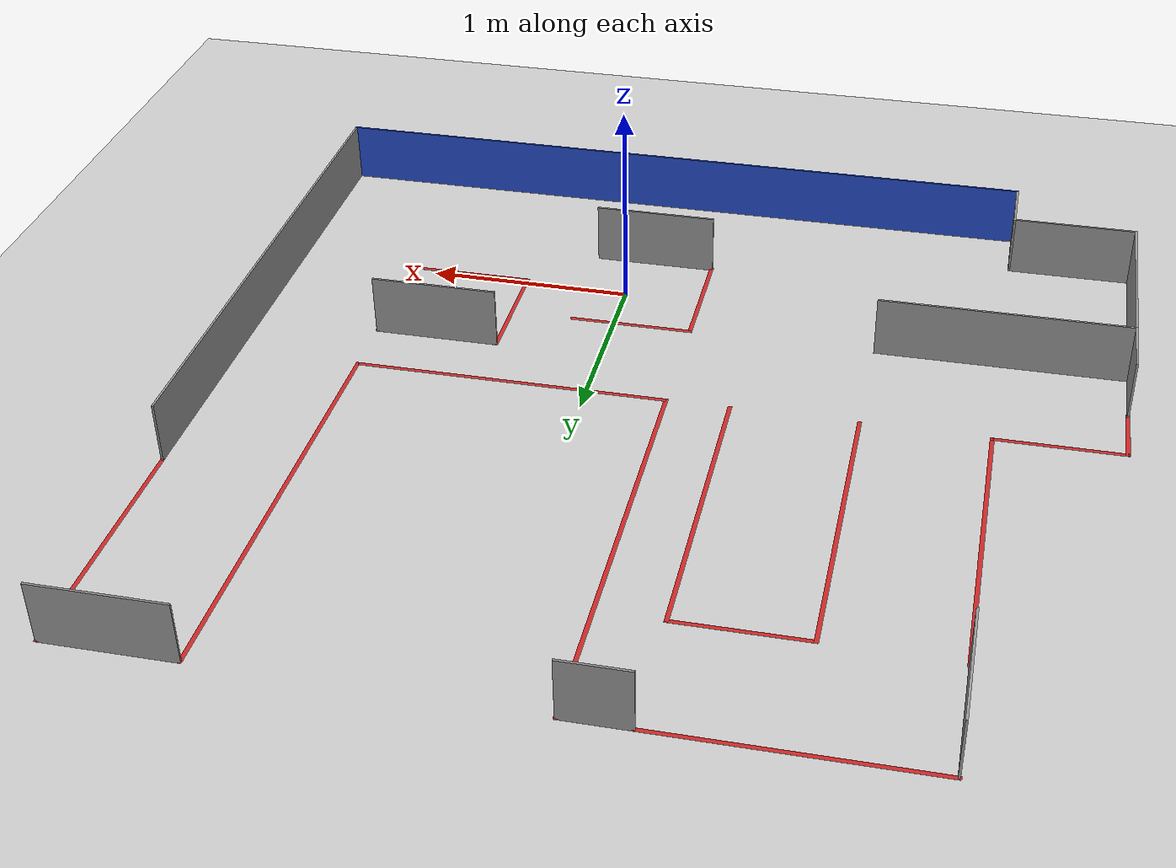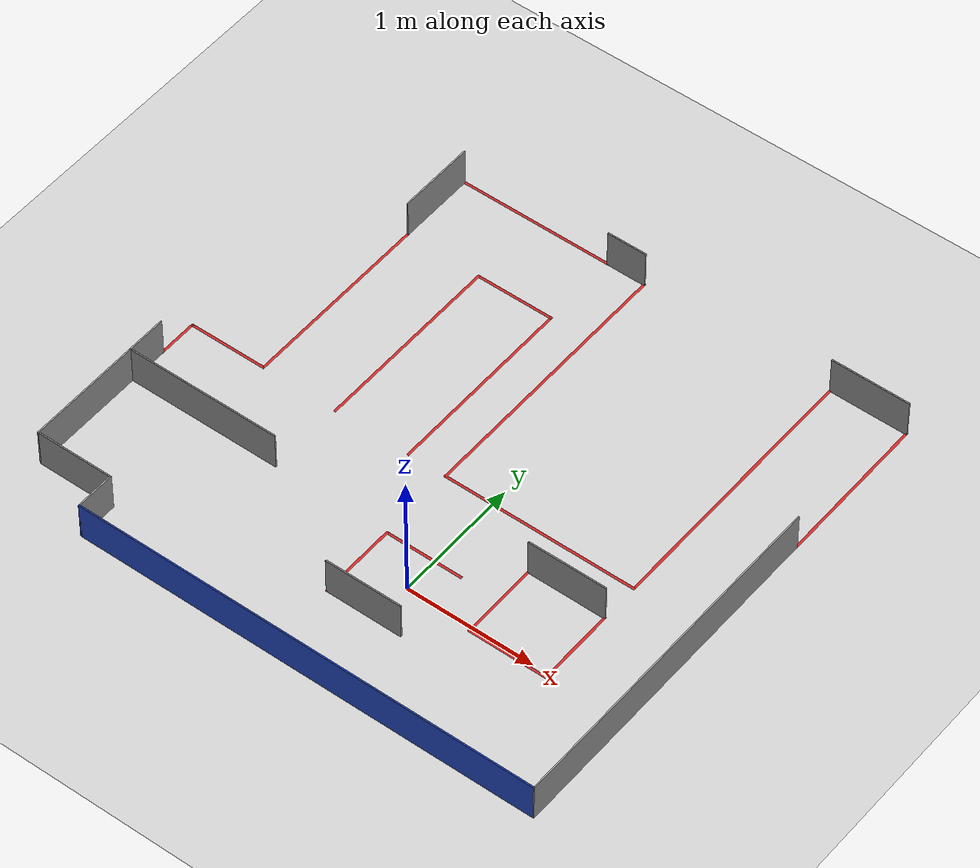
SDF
<sdf version="1.6">
 <world name="default">
  <scene><ambient>0.4 0.4 0.4 1</ambient><background>0.7 0.7 0.7 1</background><shadows>1</shadows></scene>
  <light name="sun" type="directional">
   <pose>0 0 10 0 -0 0</pose>
   <diffuse>0.8 0.8 0.8 1</diffuse>
   <specular>0.2 0.2 0.2 1</specular>
   <attenuation>
    <range>1000</range>
    <constant>0.9</constant>
    <linear>0.01</linear>
    <quadratic>0.001</quadratic>
   </attenuation>
   <direction>-0.5 0.1 -0.9</direction>
   <spot><inner_angle>0</inner_angle><outer_angle>0</outer_angle><falloff>0</falloff></spot>
  </light>
  <model name="ground_plane">
   <static>1</static>
   <link name="link">
    <collision name="collision">
     <geometry><plane><normal>0 0 1</normal><size>100 100</size></plane></geometry>
     <surface>
      <contact><collide_bitmask>65535</collide_bitmask></contact>
      <friction><ode><mu>100</mu><mu2>50</mu2></ode></friction>
     </surface>
    </collision>
    <visual name="visual">
     <cast_shadows>0</cast_shadows>
     <geometry><plane><normal>0 0 1</normal><size>100 100</size></plane></geometry>
     <material>
      <script><uri>file://media/materials/scripts/gazebo.material</uri><name>Gazebo/Grey</name></script>
     </material>
    </visual>
   </link>
  </model>
  <physics type="ode">
   <real_time_update_rate>1000</real_time_update_rate>
   <max_step_size>0.001</max_step_size>
   <real_time_factor>1</real_time_factor>
   <ode>
    <solver>
     <type>quick</type>
     <iters>150</iters>
     <precon_iters>0</precon_iters>
     <sor>1.4</sor>
     <use_dynamic_moi_rescaling>1</use_dynamic_moi_rescaling>
    </solver>
    <constraints>
     <cfm>1e-05</cfm>
     <erp>0.2</erp>
     <contact_max_correcting_vel>2000</contact_max_correcting_vel>
     <contact_surface_layer>0.01</contact_surface_layer>
    </constraints>
   </ode>
  </physics>
  <gravity>0 0 -9.8</gravity>
  <magnetic_field>6e-06 2.3e-05 -4.2e-05</magnetic_field>
  <atmosphere type="adiabatic"/>
  <spherical_coordinates>
   <surface_model>EARTH_WGS84</surface_model>
   <latitude_deg>0</latitude_deg>
   <longitude_deg>0</longitude_deg>
   <elevation>0</elevation>
   <heading_deg>0</heading_deg>
  </spherical_coordinates>
  <model name="ROSTO">
   <pose>-0.380528 1.02444 0 0 -0 0</pose>
   <link name="Wall_0">
    <collision name="Wall_0_Collision">
     <geometry><box><size>3.61 0.01 0.3</size></box></geometry>
     <pose>0 0 0.15 0 -0 0</pose>
    </collision>
    <visual name="Wall_0_Visual">
     <pose>0 0 0.15 0 -0 0</pose>
     <geometry><box><size>3.61 0.01 0.3</size></box></geometry>
     <material>
      <script><uri>file://media/materials/scripts/gazebo.material</uri><name>Gazebo/Blue</name></script>
      <ambient>1 1 1 1</ambient>
     </material>
     <meta><layer>0</layer></meta>
    </visual>
    <pose>0.3 -1.9525 0 0 -0 0</pose>
   </link>
   <link name="Wall_12">
    <collision name="Wall_12_Collision">
     <geometry><box><size>0.61 0.01 0.3</size></box></geometry>
     <pose>0 0 0.15 0 -0 0</pose>
    </collision>
    <visual name="Wall_12_Visual">
     <pose>0 0 0.15 0 -0 0</pose>
     <geometry><box><size>0.61 0.01 0.3</size></box></geometry>
     <material>
      <script><uri>file://media/materials/scripts/gazebo.material</uri><name>Gazebo/Grey</name></script>
      <ambient>1 1 1 1</ambient>
     </material>
     <meta><layer>0</layer></meta>
    </visual>
    <pose>1.8 1.9475 0 0 -0 3.14159</pose>
   </link>
   <link name="Wall_14">
    <collision name="Wall_14_Collision">
     <geometry><box><size>2.12 0.02 0</size></box></geometry>
     <pose>0 0 0.005 0 -0 0</pose>
    </collision>
    <visual name="Wall_14_Visual">
     <pose>0 0 0.005 0 -0 0</pose>
     <geometry><box><size>2.12 0.02 0</size></box></geometry>
     <material>
      <script><uri>file://media/materials/scripts/gazebo.material</uri><name>Gazebo/Red</name></script>
      <ambient>1 0 0 1</ambient>
     </material>
     <meta><layer>0</layer></meta>
    </visual>
    <pose>1.5 0.8975 0 0 -0 -1.5708</pose>
   </link>
   <link name="Wall_16">
    <collision name="Wall_16_Collision">
     <geometry><box><size>1.52 0.02 0</size></box></geometry>
     <pose>0 0 0.005 0 -0 0</pose>
    </collision>
    <visual name="Wall_16_Visual">
     <pose>0 0 0.005 0 -0 0</pose>
     <geometry><box><size>1.52 0.02 0</size></box></geometry>
     <material>
      <script><uri>file://media/materials/scripts/gazebo.material</uri><name>Gazebo/Red</name></script>
      <ambient>1 0 0 1</ambient>
     </material>
     <meta><layer>0</layer></meta>
    </visual>
    <pose>0.75 -0.1525 0 0 -0 3.14159</pose>
   </link>
   <link name="Wall_18">
    <collision name="Wall_18_Collision">
     <geometry><box><size>2.12 0.02 0</size></box></geometry>
     <pose>0 0 0.005 0 -0 0</pose>
    </collision>
    <visual name="Wall_18_Visual">
     <pose>0 0 0.005 0 -0 0</pose>
     <geometry><box><size>2.12 0.02 0</size></box></geometry>
     <material>
      <script><uri>file://media/materials/scripts/gazebo.material</uri><name>Gazebo/Red</name></script>
      <ambient>1 0 0 1</ambient>
     </material>
     <meta><layer>0</layer></meta>
    </visual>
    <pose>0 0.8975 0 0 -0 1.5708</pose>
   </link>
   <link name="Wall_20">
    <collision name="Wall_20_Collision">
     <geometry><box><size>0.31 0.01 0.3</size></box></geometry>
     <pose>0 0 0.15 0 -0 0</pose>
    </collision>
    <visual name="Wall_20_Visual">
     <pose>0 0 0.15 0 -0 0</pose>
     <geometry><box><size>0.31 0.01 0.3</size></box></geometry>
     <material>
      <script><uri>file://media/materials/scripts/gazebo.material</uri><name>Gazebo/Grey</name></script>
      <ambient>1 1 1 1</ambient>
     </material>
     <meta><layer>0</layer></meta>
    </visual>
    <pose>-0.15 1.9475 0 0 -0 3.14159</pose>
   </link>
   <link name="Wall_24">
    <collision name="Wall_24_Collision">
     <geometry><box><size>1.22 0.02 0</size></box></geometry>
     <pose>0 0 0.005 0 -0 0</pose>
    </collision>
    <visual name="Wall_24_Visual">
     <pose>0 0 0.005 0 -0 0</pose>
     <geometry><box><size>1.22 0.02 0</size></box></geometry>
     <material>
      <script><uri>file://media/materials/scripts/gazebo.material</uri><name>Gazebo/Red</name></script>
      <ambient>1 0 0 1</ambient>
     </material>
     <meta><layer>0</layer></meta>
    </visual>
    <pose>-0.9 1.9475 0 0 -0 3.14159</pose>
   </link>
   <link name="Wall_26">
    <collision name="Wall_26_Collision">
     <geometry><box><size>0.61 0.01 0.3</size></box></geometry>
     <pose>0 0 0.15 0 -0 0</pose>
    </collision>
    <visual name="Wall_26_Visual">
     <pose>0 0 0.15 0 -0 0</pose>
     <geometry><box><size>0.61 0.01 0.3</size></box></geometry>
     <material>
      <script><uri>file://media/materials/scripts/gazebo.material</uri><name>Gazebo/Grey</name></script>
      <ambient>1 1 1 1</ambient>
     </material>
     <meta><layer>0</layer></meta>
    </visual>
    <pose>-1.5 1.6475 0 0 -0 -1.5708</pose>
   </link>
   <link name="Wall_28">
    <collision name="Wall_28_Collision">
     <geometry><box><size>1.52 0.02 0</size></box></geometry>
     <pose>0 0 0.005 0 -0 0</pose>
    </collision>
    <visual name="Wall_28_Visual">
     <pose>0 0 0.005 0 -0 0</pose>
     <geometry><box><size>1.52 0.02 0</size></box></geometry>
     <material>
      <script><uri>file://media/materials/scripts/gazebo.material</uri><name>Gazebo/Red</name></script>
      <ambient>1 0 0 1</ambient>
     </material>
     <meta><layer>0</layer></meta>
    </visual>
    <pose>-1.5 0.5975 0 0 -0 -1.5708</pose>
   </link>
   <link name="Wall_3">
    <collision name="Wall_3_Collision">
     <geometry><box><size>2.71 0.01 0.3</size></box></geometry>
     <pose>0 0 0.15 0 -0 0</pose>
    </collision>
    <visual name="Wall_3_Visual">
     <pose>0 0 0.15 0 -0 0</pose>
     <geometry><box><size>2.71 0.01 0.3</size></box></geometry>
     <material>
      <script><uri>file://media/materials/scripts/gazebo.material</uri><name>Gazebo/Grey</name></script>
      <ambient>1 1 1 1</ambient>
     </material>
     <meta><layer>0</layer></meta>
    </visual>
    <pose>2.1 -0.6025 0 0 -0 1.5708</pose>
   </link>
   <link name="Wall_30">
    <collision name="Wall_30_Collision">
     <geometry><box><size>0.62 0.02 0</size></box></geometry>
     <pose>0 0 0.005 0 -0 0</pose>
    </collision>
    <visual name="Wall_30_Visual">
     <pose>0 0 0.005 0 -0 0</pose>
     <geometry><box><size>0.62 0.02 0</size></box></geometry>
     <material>
      <script><uri>file://media/materials/scripts/gazebo.material</uri><name>Gazebo/Red</name></script>
      <ambient>1 0 0 1</ambient>
     </material>
     <meta><layer>0</layer></meta>
    </visual>
    <pose>-1.8 -0.1525 0 0 -0 3.14159</pose>
   </link>
   <link name="Wall_32">
    <collision name="Wall_32_Collision">
     <geometry><box><size>0.32 0.02 0</size></box></geometry>
     <pose>0 0 0.005 0 -0 0</pose>
    </collision>
    <visual name="Wall_32_Visual">
     <pose>0 0 0.005 0 -0 0</pose>
     <geometry><box><size>0.32 0.02 0</size></box></geometry>
     <material>
      <script><uri>file://media/materials/scripts/gazebo.material</uri><name>Gazebo/Red</name></script>
      <ambient>1 0 0 1</ambient>
     </material>
     <meta><layer>0</layer></meta>
    </visual>
    <pose>-2.1 -0.3025 0 0 -0 -1.5708</pose>
   </link>
   <link name="Wall_34">
    <collision name="Wall_34_Collision">
     <geometry><box><size>0.31 0.01 0.3</size></box></geometry>
     <pose>0 0 0.15 0 -0 0</pose>
    </collision>
    <visual name="Wall_34_Visual">
     <pose>0 0 0.15 0 -0 0</pose>
     <geometry><box><size>0.31 0.01 0.3</size></box></geometry>
     <material>
      <script><uri>file://media/materials/scripts/gazebo.material</uri><name>Gazebo/Grey</name></script>
      <ambient>1 1 1 1</ambient>
     </material>
     <meta><layer>0</layer></meta>
    </visual>
    <pose>-2.1 -0.6025 0 0 -0 -1.5708</pose>
   </link>
   <link name="Wall_37">
    <collision name="Wall_37_Collision">
     <geometry><box><size>1.205 0.01 0.3</size></box></geometry>
     <pose>0 0 0.15 0 -0 0</pose>
    </collision>
    <visual name="Wall_37_Visual">
     <pose>0 0 0.15 0 -0 0</pose>
     <geometry><box><size>1.205 0.01 0.3</size></box></geometry>
     <material>
      <script><uri>file://media/materials/scripts/gazebo.material</uri><name>Gazebo/Grey</name></script>
      <ambient>1 1 1 1</ambient>
     </material>
     <meta><layer>0</layer></meta>
    </visual>
    <pose>-1.5025 -0.7525 0 0 -0 0</pose>
   </link>
   <link name="Wall_39">
    <collision name="Wall_39_Collision">
     <geometry><box><size>0.91 0.01 0.3</size></box></geometry>
     <pose>0 0 0.15 0 -0 0</pose>
    </collision>
    <visual name="Wall_39_Visual">
     <pose>0 0 0.15 0 -0 0</pose>
     <geometry><box><size>0.91 0.01 0.3</size></box></geometry>
     <material>
      <script><uri>file://media/materials/scripts/gazebo.material</uri><name>Gazebo/Grey</name></script>
      <ambient>1 1 1 1</ambient>
     </material>
     <meta><layer>0</layer></meta>
    </visual>
    <pose>-2.1 -1.2025 0 0 -0 -1.5708</pose>
   </link>
   <link name="Wall_41">
    <collision name="Wall_41_Collision">
     <geometry><box><size>0.61 0.01 0.3</size></box></geometry>
     <pose>0 0 0.15 0 -0 0</pose>
    </collision>
    <visual name="Wall_41_Visual">
     <pose>0 0 0.15 0 -0 0</pose>
     <geometry><box><size>0.61 0.01 0.3</size></box></geometry>
     <material>
      <script><uri>file://media/materials/scripts/gazebo.material</uri><name>Gazebo/Grey</name></script>
      <ambient>1 1 1 1</ambient>
     </material>
     <meta><layer>0</layer></meta>
    </visual>
    <pose>-1.8 -1.6525 0 0 -0 0</pose>
   </link>
   <link name="Wall_43">
    <collision name="Wall_43_Collision">
     <geometry><box><size>0.31 0.01 0.3</size></box></geometry>
     <pose>0 0 0.15 0 -0 0</pose>
    </collision>
    <visual name="Wall_43_Visual">
     <pose>0 0 0.15 0 -0 0</pose>
     <geometry><box><size>0.31 0.01 0.3</size></box></geometry>
     <material>
      <script><uri>file://media/materials/scripts/gazebo.material</uri><name>Gazebo/Grey</name></script>
      <ambient>1 1 1 1</ambient>
     </material>
     <meta><layer>0</layer></meta>
    </visual>
    <pose>-1.5 -1.8025 0 0 -0 -1.5708</pose>
   </link>
   <link name="Wall_50">
    <collision name="Wall_50_Collision">
     <geometry><box><size>1.51 0.02 0</size></box></geometry>
     <pose>0 0 0.005 0 -0 0</pose>
    </collision>
    <visual name="Wall_50_Visual">
     <pose>0 0 0.005 0 -0 0</pose>
     <geometry><box><size>1.51 0.02 0</size></box></geometry>
     <material>
      <script><uri>file://media/materials/scripts/gazebo.material</uri><name>Gazebo/Red</name></script>
      <ambient>1 0 0 1</ambient>
     </material>
     <meta><layer>0</layer></meta>
    </visual>
    <pose>-0.3 0.5915 0 0 -0 1.5708</pose>
   </link>
   <link name="Wall_52">
    <collision name="Wall_52_Collision">
     <geometry><box><size>0.62 0.02 0</size></box></geometry>
     <pose>0 0 0.005 0 -0 0</pose>
    </collision>
    <visual name="Wall_52_Visual">
     <pose>0 0 0.005 0 -0 0</pose>
     <geometry><box><size>0.62 0.02 0</size></box></geometry>
     <material>
      <script><uri>file://media/materials/scripts/gazebo.material</uri><name>Gazebo/Red</name></script>
      <ambient>1 0 0 1</ambient>
     </material>
     <meta><layer>0</layer></meta>
    </visual>
    <pose>-0.6 1.3365 0 0 -0 3.14159</pose>
   </link>
   <link name="Wall_54">
    <collision name="Wall_54_Collision">
     <geometry><box><size>1.51 0.02 0</size></box></geometry>
     <pose>0 0 0.005 0 -0 0</pose>
    </collision>
    <visual name="Wall_54_Visual">
     <pose>0 0 0.005 0 -0 0</pose>
     <geometry><box><size>1.51 0.02 0</size></box></geometry>
     <material>
      <script><uri>file://media/materials/scripts/gazebo.material</uri><name>Gazebo/Red</name></script>
      <ambient>1 0 0 1</ambient>
     </material>
     <meta><layer>0</layer></meta>
    </visual>
    <pose>-0.9 0.5915 0 0 -0 -1.5708</pose>
   </link>
   <link name="Wall_58">
    <collision name="Wall_58_Collision">
     <geometry><box><size>0.61 0.02 0</size></box></geometry>
     <pose>0 0 0.005 0 -0 0</pose>
    </collision>
    <visual name="Wall_58_Visual">
     <pose>0 0 0.005 0 -0 0</pose>
     <geometry><box><size>0.61 0.02 0</size></box></geometry>
     <material>
      <script><uri>file://media/materials/scripts/gazebo.material</uri><name>Gazebo/Red</name></script>
      <ambient>1 0 0 1</ambient>
     </material>
     <meta><layer>0</layer></meta>
    </visual>
    <pose>0.295 -0.7475 0 0 -0 0</pose>
   </link>
   <link name="Wall_6">
    <collision name="Wall_6_Collision">
     <geometry><box><size>1.22 0.02 0</size></box></geometry>
     <pose>0 0 0.005 0 -0 0</pose>
    </collision>
    <visual name="Wall_6_Visual">
     <pose>0 0 0.005 0 -0 0</pose>
     <geometry><box><size>1.22 0.02 0</size></box></geometry>
     <material>
      <script><uri>file://media/materials/scripts/gazebo.material</uri><name>Gazebo/Red</name></script>
      <ambient>1 0 0 1</ambient>
     </material>
     <meta><layer>0</layer></meta>
    </visual>
    <pose>2.1 1.3475 0 0 -0 1.5708</pose>
   </link>
   <link name="Wall_60">
    <collision name="Wall_60_Collision">
     <geometry><box><size>0.62 0.02 0</size></box></geometry>
     <pose>0 0 0.005 0 -0 0</pose>
    </collision>
    <visual name="Wall_60_Visual">
     <pose>0 0 0.005 0 -0 0</pose>
     <geometry><box><size>0.62 0.02 0</size></box></geometry>
     <material>
      <script><uri>file://media/materials/scripts/gazebo.material</uri><name>Gazebo/Red</name></script>
      <ambient>1 0 0 1</ambient>
     </material>
     <meta><layer>0</layer></meta>
    </visual>
    <pose>0 -1.0475 0 0 -0 -1.5708</pose>
   </link>
   <link name="Wall_62">
    <collision name="Wall_62_Collision">
     <geometry><box><size>0.6 0.01 0.3</size></box></geometry>
     <pose>0 0 0.15 0 -0 0</pose>
    </collision>
    <visual name="Wall_62_Visual">
     <pose>0 0 0.15 0 -0 0</pose>
     <geometry><box><size>0.6 0.01 0.3</size></box></geometry>
     <material>
      <script><uri>file://media/materials/scripts/gazebo.material</uri><name>Gazebo/Grey</name></script>
      <ambient>1 1 1 1</ambient>
     </material>
     <meta><layer>0</layer></meta>
    </visual>
    <pose>0.295 -1.3475 0 0 -0 0</pose>
   </link>
   <link name="Wall_66">
    <collision name="Wall_66_Collision">
     <geometry><box><size>0.61 0.01 0.3</size></box></geometry>
     <pose>0 0 0.15 0 -0 0</pose>
    </collision>
    <visual name="Wall_66_Visual">
     <pose>0 0 0.15 0 -0 0</pose>
     <geometry><box><size>0.61 0.01 0.3</size></box></geometry>
     <material>
      <script><uri>file://media/materials/scripts/gazebo.material</uri><name>Gazebo/Grey</name></script>
      <ambient>1 1 1 1</ambient>
     </material>
     <meta><layer>0</layer></meta>
    </visual>
    <pose>1.2 -0.4525 0 0 -0 3.14159</pose>
   </link>
   <link name="Wall_68">
    <collision name="Wall_68_Collision">
     <geometry><box><size>0.62 0.02 0</size></box></geometry>
     <pose>0 0 0.005 0 -0 0</pose>
    </collision>
    <visual name="Wall_68_Visual">
     <pose>0 0 0.005 0 -0 0</pose>
     <geometry><box><size>0.62 0.02 0</size></box></geometry>
     <material>
      <script><uri>file://media/materials/scripts/gazebo.material</uri><name>Gazebo/Red</name></script>
      <ambient>1 0 0 1</ambient>
     </material>
     <meta><layer>0</layer></meta>
    </visual>
    <pose>0.9 -0.7525 0 0 -0 -1.5708</pose>
   </link>
   <link name="Wall_70">
    <collision name="Wall_70_Collision">
     <geometry><box><size>0.62 0.02 0</size></box></geometry>
     <pose>0 0 0.005 0 -0 0</pose>
    </collision>
    <visual name="Wall_70_Visual">
     <pose>0 0 0.005 0 -0 0</pose>
     <geometry><box><size>0.62 0.02 0</size></box></geometry>
     <material>
      <script><uri>file://media/materials/scripts/gazebo.material</uri><name>Gazebo/Red</name></script>
      <ambient>1 0 0 1</ambient>
     </material>
     <meta><layer>0</layer></meta>
    </visual>
    <pose>1.2 -1.0525 0 0 -0 0</pose>
   </link>
   <link name="Wall_76">
    <collision name="Wall_76_Collision">
     <geometry><box><size>0.62 0.02 0</size></box></geometry>
     <pose>0 0 0.005 0 -0 0</pose>
    </collision>
    <visual name="Wall_76_Visual">
     <pose>0 0 0.005 0 -0 0</pose>
     <geometry><box><size>0.62 0.02 0</size></box></geometry>
     <material>
      <script><uri>file://media/materials/scripts/gazebo.material</uri><name>Gazebo/Red</name></script>
      <ambient>1 0 0 1</ambient>
     </material>
     <meta><layer>0</layer></meta>
    </visual>
    <pose>1.5 -0.7525 0 0 -0 1.5708</pose>
   </link>
   <static>1</static>
  </model>
  <plugin filename="libcollision_map_creator.so" name="collision_map_creator"/>
 </world>
</sdf>
